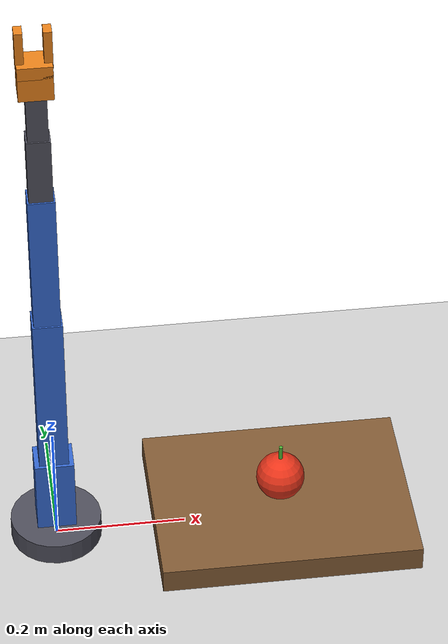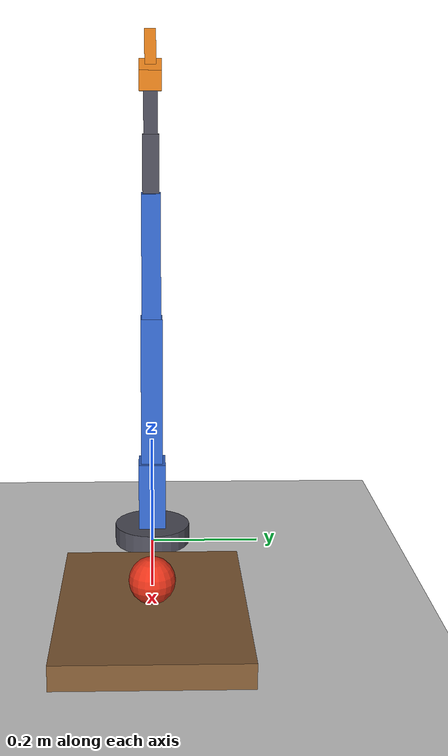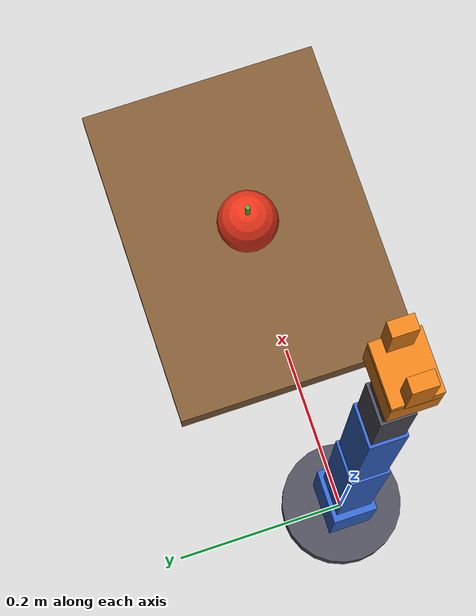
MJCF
<mujoco model="robot_arm_pick_apple">
  <compiler angle="radian" meshdir="." autolimits="true"/>
  <option timestep="0.002" gravity="0 0 -9.81" iterations="50" solver="Newton">
    <flag warmstart="enable"/>
  </option>

  <asset>
    <texture type="skybox" builtin="gradient" rgb1="0.6 0.8 1.0" rgb2="0.2 0.4 0.8" width="512" height="512"/>
    <texture name="grid" type="2d" builtin="checker" rgb1="0.9 0.9 0.9" rgb2="0.7 0.7 0.7" width="512" height="512"/>
    <material name="grid_mat" texture="grid" texrepeat="10 10" reflectance="0.1"/>
    <material name="robot_blue" rgba="0.2 0.4 0.8 1.0"/>
    <material name="robot_grey" rgba="0.3 0.3 0.35 1.0"/>
    <material name="robot_orange" rgba="0.9 0.5 0.1 1.0"/>
    <material name="apple_red" rgba="0.9 0.2 0.1 1.0"/>
    <material name="apple_green" rgba="0.3 0.7 0.2 1.0"/>
    <material name="wood" rgba="0.5 0.35 0.2 1.0"/>
  </asset>

  <worldbody>
    <!-- Ground -->
    <light name="sun" pos="1 1 3" dir="-1 -1 -3" diffuse="0.8 0.8 0.8"/>
    <light name="fill" pos="-1 0.5 2" dir="1 -0.5 -2" diffuse="0.4 0.4 0.4"/>
    <geom name="floor" type="plane" size="2 2 0.1" material="grid_mat"/>

    <!-- Table -->
    <body name="table" pos="0.35 0 0.02">
      <geom name="table_top" type="box" size="0.20 0.15 0.02" material="wood" friction="0.8"/>
    </body>

    <!-- Apple (kinematic, will be moved by controller when grasped) -->
    <body name="apple" pos="0.35 0 0.0775">
      <geom name="apple_geom" type="sphere" size="0.0375" material="apple_red"/>
      <geom name="apple_stem" type="cylinder" size="0.003 0.015" pos="0 0 0.045" material="apple_green"/>
    </body>

    <!-- Environment camera: bird's eye view tracking the apple -->
    <camera name="env_camera" mode="targetbody" target="apple" pos="0.35 -0.6 1.2" fovy="55"/>

    <!-- ===== Robot Base ===== -->
    <body name="base_link" pos="0 0 0">
      <geom name="base_geom" type="cylinder" size="0.070 0.0175" pos="0 0 0.0175" material="robot_grey"/>

      <!-- Joint 1 -->
      <body name="link1" pos="0 0 0.035">
        <joint name="joint1" type="hinge" axis="0 0 1" range="-3.14 3.14" damping="5.0"/>
        <geom name="link1_geom" type="box" size="0.030 0.025 0.0625" pos="0 0 0.0625" material="robot_blue"/>

        <!-- Joint 2 -->
        <body name="link2" pos="0 0 0.125">
          <joint name="joint2" type="hinge" axis="0 1 0" range="-1.57 1.57" damping="5.0"/>
          <geom name="link2_geom" type="box" size="0.0225 0.020 0.1375" pos="0 0 0.1375" material="robot_blue"/>

          <!-- Joint 3 -->
          <body name="link3" pos="0 0 0.275">
            <joint name="joint3" type="hinge" axis="0 1 0" range="-2.0 2.0" damping="4.0"/>
            <geom name="link3_geom" type="box" size="0.020 0.0175 0.114" pos="0 0 0.114" material="robot_blue"/>

            <!-- Joint 4 -->
            <body name="link4" pos="0 0 0.228">
              <joint name="joint4" type="hinge" axis="0 0 1" range="-3.14 3.14" damping="2.0"/>
              <geom name="link4_geom" type="box" size="0.0175 0.015 0.0525" pos="0 0 0.0525" material="robot_grey"/>

              <!-- Joint 5 -->
              <body name="link5" pos="0 0 0.105">
                <joint name="joint5" type="hinge" axis="0 1 0" range="-1.57 1.57" damping="2.0"/>
                <geom name="link5_geom" type="box" size="0.015 0.0125 0.0375" pos="0 0 0.0375" material="robot_grey"/>

                <!-- Joint 6 -->
                <body name="link6" pos="0 0 0.075">
                  <joint name="joint6" type="hinge" axis="0 0 1" range="-3.14 3.14" damping="1.0"/>
                  <geom name="link6_geom" type="box" size="0.025 0.020 0.0225" pos="0 0 0.0225" material="robot_orange"/>

                  <!-- Gripper base -->
                  <body name="gripper" pos="0 0 0.045">
                    <geom name="gripper_base" type="box" size="0.025 0.020 0.010" material="robot_orange"/>
                    <!-- Eye-in-hand camera: between fingers, looking at target -->
                    <camera name="eye_in_hand" mode="targetbody" target="apple" pos="0 0 0.08" fovy="70"/>

                    <!-- Left finger -->
                    <body name="left_finger" pos="-0.020 0 0.030">
                      <joint name="left_gripper_joint" type="slide" axis="1 0 0" range="0 0.040" damping="0.5"/>
                      <geom name="left_finger_geom" type="box" size="0.006 0.010 0.030" material="robot_orange"/>
                    </body>

                    <!-- Right finger -->
                    <body name="right_finger" pos="0.020 0 0.030">
                      <joint name="right_gripper_joint" type="slide" axis="-1 0 0" range="0 0.040" damping="0.5"/>
                      <geom name="right_finger_geom" type="box" size="0.006 0.010 0.030" material="robot_orange"/>
                    </body>
                  </body>
                </body>
              </body>
            </body>
          </body>
        </body>
      </body>
    </body>
  </worldbody>

  <!-- No actuators: arm is kinematically controlled -->
</mujoco>
